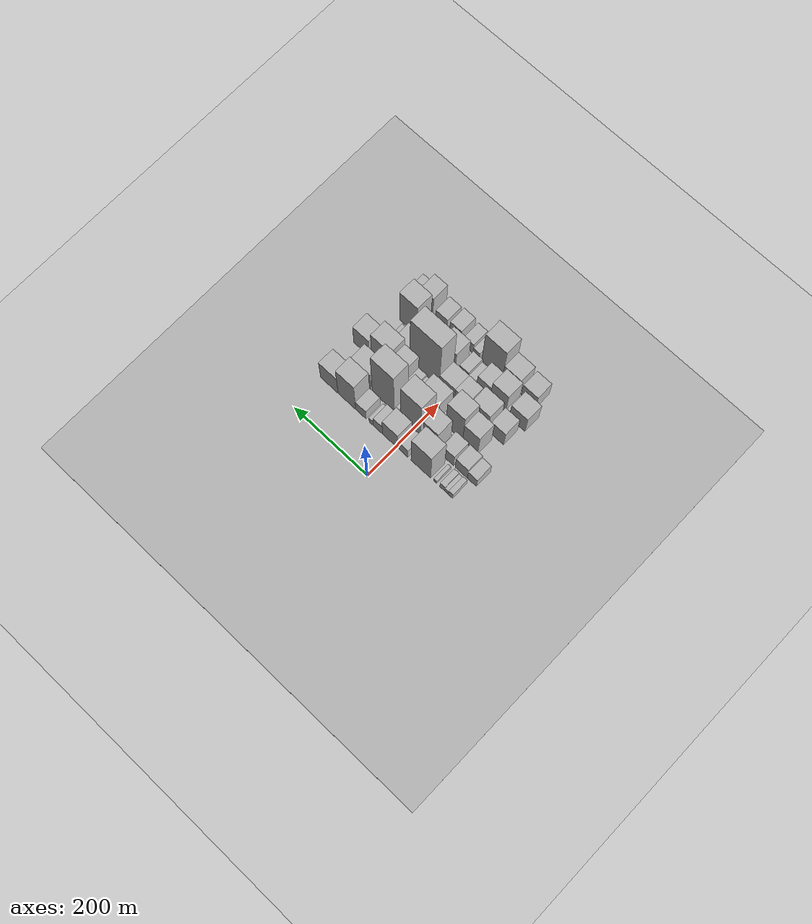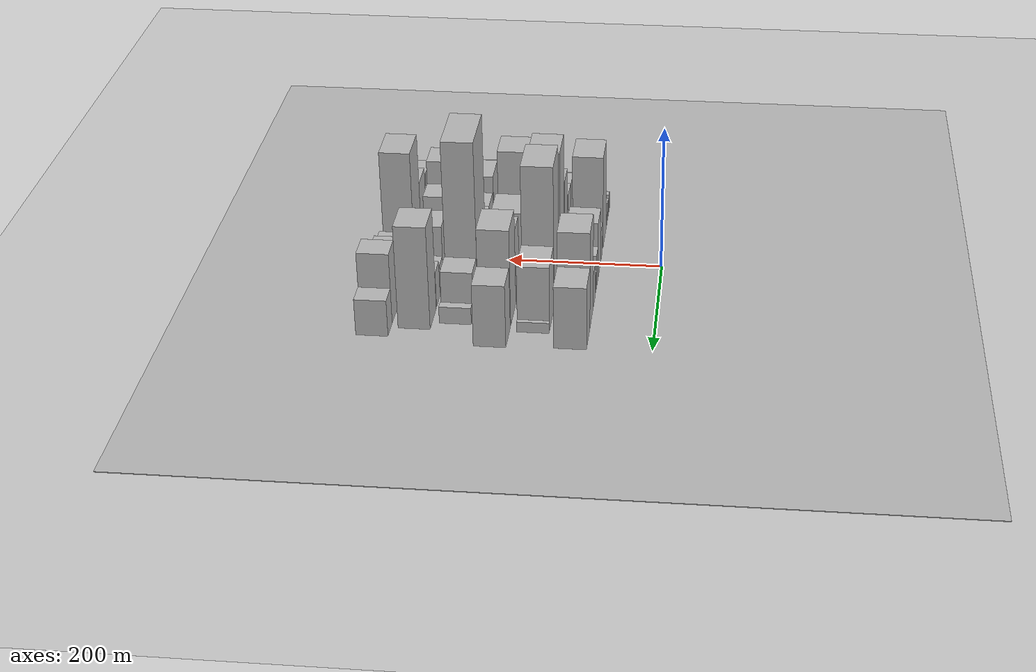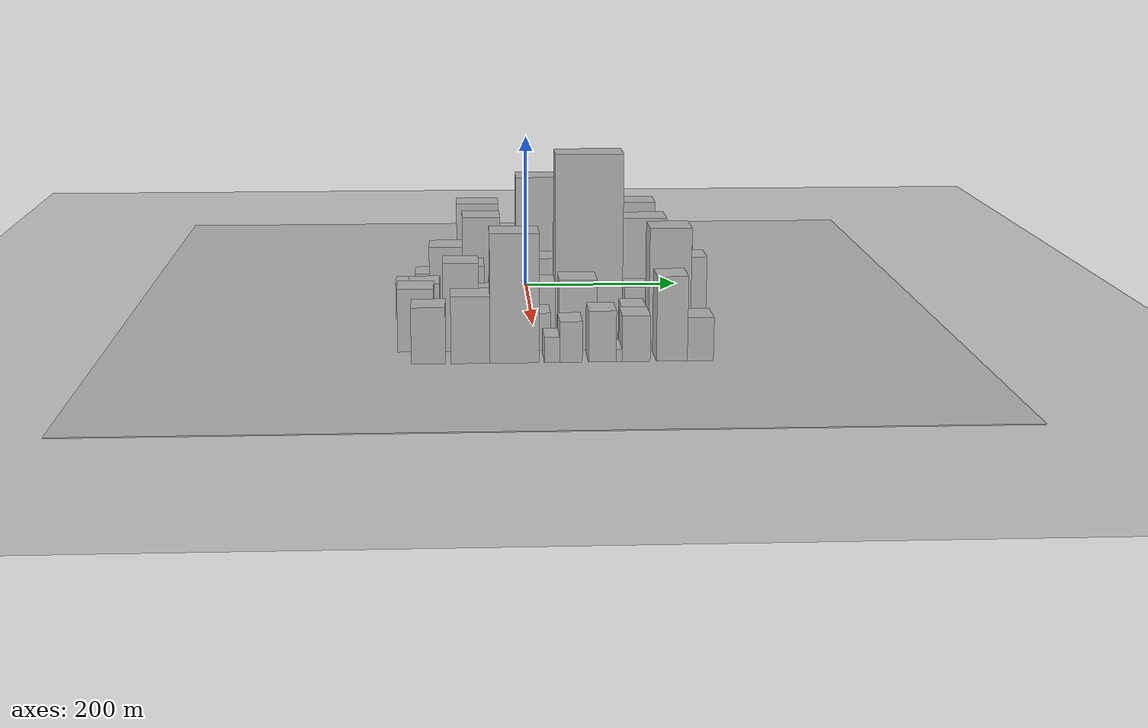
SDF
<sdf version="1.6">
 <world name="default">
  <include><name>ground_plane_1</name><uri>model://HANNAS_ground_plane</uri></include>
  <include>
   <name>ground_plane_2</name>
   <uri>model://HANNAS_ground_plane</uri>
   <pose>100 0 0  0 0 0</pose>
  </include>
  <model name="building_21">
   <static>1</static>
   <pose>100.0000 -145.0932 0 0.000000 0.000000 0.000000</pose>
   <link name="link">
    <pose>0 0 13.50 0 0 0</pose>
    <collision name="collision"><geometry><box><size>40.0000 11.6714 27.0000</size></box></geometry></collision>
    <visual name="visual">
     <cast_shadows>0</cast_shadows>
     <geometry><box><size>40.0000 11.6714 27.0000</size></box></geometry>
     <material>
      <script>
       <uri>model://HANNAS_wall/materials/scripts</uri>
       <uri>model://HANNAS_wall/materials/textures</uri>
       <name>vrc/HANNAS_wall</name>
      </script>
     </material>
    </visual>
   </link>
  </model>
  <model name="building_22">
   <static>1</static>
   <pose>100.0000 -134.6083 0 0.000000 0.000000 0.000000</pose>
   <link name="link">
    <pose>0 0 10.50 0 0 0</pose>
    <collision name="collision"><geometry><box><size>40.0000 9.2983 21.0000</size></box></geometry></collision>
    <visual name="visual">
     <cast_shadows>0</cast_shadows>
     <geometry><box><size>40.0000 9.2983 21.0000</size></box></geometry>
     <material>
      <script>
       <uri>model://HANNAS_wall/materials/scripts</uri>
       <uri>model://HANNAS_wall/materials/textures</uri>
       <name>vrc/HANNAS_wall</name>
      </script>
     </material>
    </visual>
   </link>
  </model>
  <model name="building_23">
   <static>1</static>
   <pose>100.0000 -123.3137 0 0.000000 0.000000 0.000000</pose>
   <link name="link">
    <pose>0 0 13.50 0 0 0</pose>
    <collision name="collision"><geometry><box><size>40.0000 13.2908 27.0000</size></box></geometry></collision>
    <visual name="visual">
     <cast_shadows>0</cast_shadows>
     <geometry><box><size>40.0000 13.2908 27.0000</size></box></geometry>
     <material>
      <script>
       <uri>model://HANNAS_wall/materials/scripts</uri>
       <uri>model://HANNAS_wall/materials/textures</uri>
       <name>vrc/HANNAS_wall</name>
      </script>
     </material>
    </visual>
   </link>
  </model>
  <model name="building_24">
   <static>1</static>
   <pose>100.0000 -104.4396 0 0.000000 0.000000 0.000000</pose>
   <link name="link">
    <pose>0 0 9.00 0 0 0</pose>
    <collision name="collision"><geometry><box><size>40.0000 8.4573 18.0000</size></box></geometry></collision>
    <visual name="visual">
     <cast_shadows>0</cast_shadows>
     <geometry><box><size>40.0000 8.4573 18.0000</size></box></geometry>
     <material>
      <script>
       <uri>model://HANNAS_wall/materials/scripts</uri>
       <uri>model://HANNAS_wall/materials/textures</uri>
       <name>vrc/HANNAS_wall</name>
      </script>
     </material>
    </visual>
   </link>
  </model>
  <model name="building_25">
   <static>1</static>
   <pose>100.0000 -66.0082 0 0.000000 0.000000 0.000000</pose>
   <link name="link">
    <pose>0 0 67.50 0 0 0</pose>
    <collision name="collision"><geometry><box><size>40.0000 52.4056 135.0000</size></box></geometry></collision>
    <visual name="visual">
     <cast_shadows>0</cast_shadows>
     <geometry><box><size>40.0000 52.4056 135.0000</size></box></geometry>
     <material>
      <script>
       <uri>model://HANNAS_wall/materials/scripts</uri>
       <uri>model://HANNAS_wall/materials/textures</uri>
       <name>vrc/HANNAS_wall</name>
      </script>
     </material>
    </visual>
   </link>
  </model>
  <model name="building_26">
   <static>1</static>
   <pose>100.0000 -19.6957 0 0.000000 0.000000 0.000000</pose>
   <link name="link">
    <pose>0 0 22.50 0 0 0</pose>
    <collision name="collision"><geometry><box><size>40.0000 24.2194 45.0000</size></box></geometry></collision>
    <visual name="visual">
     <cast_shadows>0</cast_shadows>
     <geometry><box><size>40.0000 24.2194 45.0000</size></box></geometry>
     <material>
      <script>
       <uri>model://HANNAS_wall/materials/scripts</uri>
       <uri>model://HANNAS_wall/materials/textures</uri>
       <name>vrc/HANNAS_wall</name>
      </script>
     </material>
    </visual>
   </link>
  </model>
  <model name="building_27">
   <static>1</static>
   <pose>100.0000 16.2949 0 0.000000 0.000000 0.000000</pose>
   <link name="link">
    <pose>0 0 40.50 0 0 0</pose>
    <collision name="collision"><geometry><box><size>40.0000 41.7618 81.0000</size></box></geometry></collision>
    <visual name="visual">
     <cast_shadows>0</cast_shadows>
     <geometry><box><size>40.0000 41.7618 81.0000</size></box></geometry>
     <material>
      <script>
       <uri>model://HANNAS_wall/materials/scripts</uri>
       <uri>model://HANNAS_wall/materials/textures</uri>
       <name>vrc/HANNAS_wall</name>
      </script>
     </material>
    </visual>
   </link>
  </model>
  <model name="building_28">
   <static>1</static>
   <pose>100.0000 49.4250 0 0.000000 0.000000 0.000000</pose>
   <link name="link">
    <pose>0 0 24.00 0 0 0</pose>
    <collision name="collision"><geometry><box><size>40.0000 24.4985 48.0000</size></box></geometry></collision>
    <visual name="visual">
     <cast_shadows>0</cast_shadows>
     <geometry><box><size>40.0000 24.4985 48.0000</size></box></geometry>
     <material>
      <script>
       <uri>model://HANNAS_wall/materials/scripts</uri>
       <uri>model://HANNAS_wall/materials/textures</uri>
       <name>vrc/HANNAS_wall</name>
      </script>
     </material>
    </visual>
   </link>
  </model>
  <model name="building_29">
   <static>1</static>
   <pose>100.0000 67.4773 0 0.000000 0.000000 0.000000</pose>
   <link name="link">
    <pose>0 0 13.50 0 0 0</pose>
    <collision name="collision"><geometry><box><size>40.0000 11.6061 27.0000</size></box></geometry></collision>
    <visual name="visual">
     <cast_shadows>0</cast_shadows>
     <geometry><box><size>40.0000 11.6061 27.0000</size></box></geometry>
     <material>
      <script>
       <uri>model://HANNAS_wall/materials/scripts</uri>
       <uri>model://HANNAS_wall/materials/textures</uri>
       <name>vrc/HANNAS_wall</name>
      </script>
     </material>
    </visual>
   </link>
  </model>
  <model name="building_30">
   <static>1</static>
   <pose>100.0000 95.4846 0 0.000000 0.000000 0.000000</pose>
   <link name="link">
    <pose>0 0 24.00 0 0 0</pose>
    <collision name="collision"><geometry><box><size>40.0000 28.4085 48.0000</size></box></geometry></collision>
    <visual name="visual">
     <cast_shadows>0</cast_shadows>
     <geometry><box><size>40.0000 28.4085 48.0000</size></box></geometry>
     <material>
      <script>
       <uri>model://HANNAS_wall/materials/scripts</uri>
       <uri>model://HANNAS_wall/materials/textures</uri>
       <name>vrc/HANNAS_wall</name>
      </script>
     </material>
    </visual>
   </link>
  </model>
  <model name="building_31">
   <static>1</static>
   <pose>100.0000 133.8912 0 0.000000 0.000000 0.000000</pose>
   <link name="link">
    <pose>0 0 67.50 0 0 0</pose>
    <collision name="collision"><geometry><box><size>40.0000 48.4046 135.0000</size></box></geometry></collision>
    <visual name="visual">
     <cast_shadows>0</cast_shadows>
     <geometry><box><size>40.0000 48.4046 135.0000</size></box></geometry>
     <material>
      <script>
       <uri>model://HANNAS_wall/materials/scripts</uri>
       <uri>model://HANNAS_wall/materials/textures</uri>
       <name>vrc/HANNAS_wall</name>
      </script>
     </material>
    </visual>
   </link>
  </model>
  <model name="building_32">
   <static>1</static>
   <pose>100.0000 182.2587 0 0.000000 0.000000 0.000000</pose>
   <link name="link">
    <pose>0 0 43.50 0 0 0</pose>
    <collision name="collision"><geometry><box><size>40.0000 48.3305 87.0000</size></box></geometry></collision>
    <visual name="visual">
     <cast_shadows>0</cast_shadows>
     <geometry><box><size>40.0000 48.3305 87.0000</size></box></geometry>
     <material>
      <script>
       <uri>model://HANNAS_wall/materials/scripts</uri>
       <uri>model://HANNAS_wall/materials/textures</uri>
       <name>vrc/HANNAS_wall</name>
      </script>
     </material>
    </visual>
   </link>
  </model>
  <model name="building_78">
   <static>1</static>
   <pose>149.0000 -156.0595 0 0.000000 0.000000 0.000000</pose>
   <link name="link">
    <pose>0 0 22.50 0 0 0</pose>
    <collision name="collision"><geometry><box><size>40.0000 23.9540 45.0000</size></box></geometry></collision>
    <visual name="visual">
     <cast_shadows>0</cast_shadows>
     <geometry><box><size>40.0000 23.9540 45.0000</size></box></geometry>
     <material>
      <script>
       <uri>model://HANNAS_wall/materials/scripts</uri>
       <uri>model://HANNAS_wall/materials/textures</uri>
       <name>vrc/HANNAS_wall</name>
      </script>
     </material>
    </visual>
   </link>
  </model>
  <model name="building_79">
   <static>1</static>
   <pose>149.0000 -127.8496 0 0.000000 0.000000 0.000000</pose>
   <link name="link">
    <pose>0 0 28.50 0 0 0</pose>
    <collision name="collision"><geometry><box><size>40.0000 32.4659 57.0000</size></box></geometry></collision>
    <visual name="visual">
     <cast_shadows>0</cast_shadows>
     <geometry><box><size>40.0000 32.4659 57.0000</size></box></geometry>
     <material>
      <script>
       <uri>model://HANNAS_wall/materials/scripts</uri>
       <uri>model://HANNAS_wall/materials/textures</uri>
       <name>vrc/HANNAS_wall</name>
      </script>
     </material>
    </visual>
   </link>
  </model>
  <model name="building_80">
   <static>1</static>
   <pose>149.0000 -91.1820 0 0.000000 0.000000 0.000000</pose>
   <link name="link">
    <pose>0 0 30.00 0 0 0</pose>
    <collision name="collision"><geometry><box><size>40.0000 32.8693 60.0000</size></box></geometry></collision>
    <visual name="visual">
     <cast_shadows>0</cast_shadows>
     <geometry><box><size>40.0000 32.8693 60.0000</size></box></geometry>
     <material>
      <script>
       <uri>model://HANNAS_wall/materials/scripts</uri>
       <uri>model://HANNAS_wall/materials/textures</uri>
       <name>vrc/HANNAS_wall</name>
      </script>
     </material>
    </visual>
   </link>
  </model>
  <model name="building_81">
   <static>1</static>
   <pose>149.0000 -70.4984 0 0.000000 0.000000 0.000000</pose>
   <link name="link">
    <pose>0 0 9.00 0 0 0</pose>
    <collision name="collision"><geometry><box><size>40.0000 8.4979 18.0000</size></box></geometry></collision>
    <visual name="visual">
     <cast_shadows>0</cast_shadows>
     <geometry><box><size>40.0000 8.4979 18.0000</size></box></geometry>
     <material>
      <script>
       <uri>model://HANNAS_wall/materials/scripts</uri>
       <uri>model://HANNAS_wall/materials/textures</uri>
       <name>vrc/HANNAS_wall</name>
      </script>
     </material>
    </visual>
   </link>
  </model>
  <model name="building_82">
   <static>1</static>
   <pose>149.0000 -44.6579 0 0.000000 0.000000 0.000000</pose>
   <link name="link">
    <pose>0 0 52.50 0 0 0</pose>
    <collision name="collision"><geometry><box><size>40.0000 37.1831 105.0000</size></box></geometry></collision>
    <visual name="visual">
     <cast_shadows>0</cast_shadows>
     <geometry><box><size>40.0000 37.1831 105.0000</size></box></geometry>
     <material>
      <script>
       <uri>model://HANNAS_wall/materials/scripts</uri>
       <uri>model://HANNAS_wall/materials/textures</uri>
       <name>vrc/HANNAS_wall</name>
      </script>
     </material>
    </visual>
   </link>
  </model>
  <model name="building_83">
   <static>1</static>
   <pose>149.0000 -22.7511 0 0.000000 0.000000 0.000000</pose>
   <link name="link">
    <pose>0 0 7.50 0 0 0</pose>
    <collision name="collision"><geometry><box><size>40.0000 6.6305 15.0000</size></box></geometry></collision>
    <visual name="visual">
     <cast_shadows>0</cast_shadows>
     <geometry><box><size>40.0000 6.6305 15.0000</size></box></geometry>
     <material>
      <script>
       <uri>model://HANNAS_wall/materials/scripts</uri>
       <uri>model://HANNAS_wall/materials/textures</uri>
       <name>vrc/HANNAS_wall</name>
      </script>
     </material>
    </visual>
   </link>
  </model>
  <model name="building_84">
   <static>1</static>
   <pose>149.0000 7.8253 0 0.000000 0.000000 0.000000</pose>
   <link name="link">
    <pose>0 0 88.50 0 0 0</pose>
    <collision name="collision"><geometry><box><size>40.0000 54.5223 177.0000</size></box></geometry></collision>
    <visual name="visual">
     <cast_shadows>0</cast_shadows>
     <geometry><box><size>40.0000 54.5223 177.0000</size></box></geometry>
     <material>
      <script>
       <uri>model://HANNAS_wall/materials/scripts</uri>
       <uri>model://HANNAS_wall/materials/textures</uri>
       <name>vrc/HANNAS_wall</name>
      </script>
     </material>
    </visual>
   </link>
  </model>
  <model name="building_85">
   <static>1</static>
   <pose>149.0000 48.2555 0 0.000000 0.000000 0.000000</pose>
   <link name="link">
    <pose>0 0 9.00 0 0 0</pose>
    <collision name="collision"><geometry><box><size>40.0000 8.3381 18.0000</size></box></geometry></collision>
    <visual name="visual">
     <cast_shadows>0</cast_shadows>
     <geometry><box><size>40.0000 8.3381 18.0000</size></box></geometry>
     <material>
      <script>
       <uri>model://HANNAS_wall/materials/scripts</uri>
       <uri>model://HANNAS_wall/materials/textures</uri>
       <name>vrc/HANNAS_wall</name>
      </script>
     </material>
    </visual>
   </link>
  </model>
  <model name="building_86">
   <static>1</static>
   <pose>149.0000 82.2153 0 0.000000 0.000000 0.000000</pose>
   <link name="link">
    <pose>0 0 99.00 0 0 0</pose>
    <collision name="collision"><geometry><box><size>40.0000 59.5814 198.0000</size></box></geometry></collision>
    <visual name="visual">
     <cast_shadows>0</cast_shadows>
     <geometry><box><size>40.0000 59.5814 198.0000</size></box></geometry>
     <material>
      <script>
       <uri>model://HANNAS_wall/materials/scripts</uri>
       <uri>model://HANNAS_wall/materials/textures</uri>
       <name>vrc/HANNAS_wall</name>
      </script>
     </material>
    </visual>
   </link>
  </model>
  <model name="building_87">
   <static>1</static>
   <pose>149.0000 141.4080 0 0.000000 0.000000 0.000000</pose>
   <link name="link">
    <pose>0 0 45.00 0 0 0</pose>
    <collision name="collision"><geometry><box><size>40.0000 52.8040 90.0000</size></box></geometry></collision>
    <visual name="visual">
     <cast_shadows>0</cast_shadows>
     <geometry><box><size>40.0000 52.8040 90.0000</size></box></geometry>
     <material>
      <script>
       <uri>model://HANNAS_wall/materials/scripts</uri>
       <uri>model://HANNAS_wall/materials/textures</uri>
       <name>vrc/HANNAS_wall</name>
      </script>
     </material>
    </visual>
   </link>
  </model>
  <model name="building_88">
   <static>1</static>
   <pose>149.0000 170.8141 0 0.000000 0.000000 0.000000</pose>
   <link name="link">
    <pose>0 0 7.50 0 0 0</pose>
    <collision name="collision"><geometry><box><size>40.0000 6.0082 15.0000</size></box></geometry></collision>
    <visual name="visual">
     <cast_shadows>0</cast_shadows>
     <geometry><box><size>40.0000 6.0082 15.0000</size></box></geometry>
     <material>
      <script>
       <uri>model://HANNAS_wall/materials/scripts</uri>
       <uri>model://HANNAS_wall/materials/textures</uri>
       <name>vrc/HANNAS_wall</name>
      </script>
     </material>
    </visual>
   </link>
  </model>
  <model name="building_135">
   <static>1</static>
   <pose>198.0000 -105.4573 0 0.000000 0.000000 0.000000</pose>
   <link name="link">
    <pose>0 0 51.00 0 0 0</pose>
    <collision name="collision"><geometry><box><size>40.0000 39.9125 102.0000</size></box></geometry></collision>
    <visual name="visual">
     <cast_shadows>0</cast_shadows>
     <geometry><box><size>40.0000 39.9125 102.0000</size></box></geometry>
     <material>
      <script>
       <uri>model://HANNAS_wall/materials/scripts</uri>
       <uri>model://HANNAS_wall/materials/textures</uri>
       <name>vrc/HANNAS_wall</name>
      </script>
     </material>
    </visual>
   </link>
  </model>
  <model name="building_136">
   <static>1</static>
   <pose>198.0000 -62.9487 0 0.000000 0.000000 0.000000</pose>
   <link name="link">
    <pose>0 0 69.00 0 0 0</pose>
    <collision name="collision"><geometry><box><size>40.0000 45.1047 138.0000</size></box></geometry></collision>
    <visual name="visual">
     <cast_shadows>0</cast_shadows>
     <geometry><box><size>40.0000 45.1047 138.0000</size></box></geometry>
     <material>
      <script>
       <uri>model://HANNAS_wall/materials/scripts</uri>
       <uri>model://HANNAS_wall/materials/textures</uri>
       <name>vrc/HANNAS_wall</name>
      </script>
     </material>
    </visual>
   </link>
  </model>
  <model name="building_137">
   <static>1</static>
   <pose>198.0000 -35.6148 0 0.000000 0.000000 0.000000</pose>
   <link name="link">
    <pose>0 0 10.50 0 0 0</pose>
    <collision name="collision"><geometry><box><size>40.0000 9.5632 21.0000</size></box></geometry></collision>
    <visual name="visual">
     <cast_shadows>0</cast_shadows>
     <geometry><box><size>40.0000 9.5632 21.0000</size></box></geometry>
     <material>
      <script>
       <uri>model://HANNAS_wall/materials/scripts</uri>
       <uri>model://HANNAS_wall/materials/textures</uri>
       <name>vrc/HANNAS_wall</name>
      </script>
     </material>
    </visual>
   </link>
  </model>
  <model name="building_138">
   <static>1</static>
   <pose>198.0000 5.2168 0 0.000000 0.000000 0.000000</pose>
   <link name="link">
    <pose>0 0 43.50 0 0 0</pose>
    <collision name="collision"><geometry><box><size>40.0000 52.1000 87.0000</size></box></geometry></collision>
    <visual name="visual">
     <cast_shadows>0</cast_shadows>
     <geometry><box><size>40.0000 52.1000 87.0000</size></box></geometry>
     <material>
      <script>
       <uri>model://HANNAS_wall/materials/scripts</uri>
       <uri>model://HANNAS_wall/materials/textures</uri>
       <name>vrc/HANNAS_wall</name>
      </script>
     </material>
    </visual>
   </link>
  </model>
  <model name="building_139">
   <static>1</static>
   <pose>198.0000 39.9649 0 0.000000 0.000000 0.000000</pose>
   <link name="link">
    <pose>0 0 16.50 0 0 0</pose>
    <collision name="collision"><geometry><box><size>40.0000 17.3963 33.0000</size></box></geometry></collision>
    <visual name="visual">
     <cast_shadows>0</cast_shadows>
     <geometry><box><size>40.0000 17.3963 33.0000</size></box></geometry>
     <material>
      <script>
       <uri>model://HANNAS_wall/materials/scripts</uri>
       <uri>model://HANNAS_wall/materials/textures</uri>
       <name>vrc/HANNAS_wall</name>
      </script>
     </material>
    </visual>
   </link>
  </model>
  <model name="building_140">
   <static>1</static>
   <pose>198.0000 59.7171 0 0.000000 0.000000 0.000000</pose>
   <link name="link">
    <pose>0 0 21.00 0 0 0</pose>
    <collision name="collision"><geometry><box><size>40.0000 22.1080 42.0000</size></box></geometry></collision>
    <visual name="visual">
     <cast_shadows>0</cast_shadows>
     <geometry><box><size>40.0000 22.1080 42.0000</size></box></geometry>
     <material>
      <script>
       <uri>model://HANNAS_wall/materials/scripts</uri>
       <uri>model://HANNAS_wall/materials/textures</uri>
       <name>vrc/HANNAS_wall</name>
      </script>
     </material>
    </visual>
   </link>
  </model>
  <model name="building_141">
   <static>1</static>
   <pose>198.0000 89.1880 0 0.000000 0.000000 0.000000</pose>
   <link name="link">
    <pose>0 0 52.50 0 0 0</pose>
    <collision name="collision"><geometry><box><size>40.0000 36.8338 105.0000</size></box></geometry></collision>
    <visual name="visual">
     <cast_shadows>0</cast_shadows>
     <geometry><box><size>40.0000 36.8338 105.0000</size></box></geometry>
     <material>
      <script>
       <uri>model://HANNAS_wall/materials/scripts</uri>
       <uri>model://HANNAS_wall/materials/textures</uri>
       <name>vrc/HANNAS_wall</name>
      </script>
     </material>
    </visual>
   </link>
  </model>
  <model name="building_142">
   <static>1</static>
   <pose>198.0000 134.1314 0 0.000000 0.000000 0.000000</pose>
   <link name="link">
    <pose>0 0 67.50 0 0 0</pose>
    <collision name="collision"><geometry><box><size>40.0000 53.0529 135.0000</size></box></geometry></collision>
    <visual name="visual">
     <cast_shadows>0</cast_shadows>
     <geometry><box><size>40.0000 53.0529 135.0000</size></box></geometry>
     <material>
      <script>
       <uri>model://HANNAS_wall/materials/scripts</uri>
       <uri>model://HANNAS_wall/materials/textures</uri>
       <name>vrc/HANNAS_wall</name>
      </script>
     </material>
    </visual>
   </link>
  </model>
  <model name="building_143">
   <static>1</static>
   <pose>198.0000 188.4529 0 0.000000 0.000000 0.000000</pose>
   <link name="link">
    <pose>0 0 43.50 0 0 0</pose>
    <collision name="collision"><geometry><box><size>40.0000 43.5903 87.0000</size></box></geometry></collision>
    <visual name="visual">
     <cast_shadows>0</cast_shadows>
     <geometry><box><size>40.0000 43.5903 87.0000</size></box></geometry>
     <material>
      <script>
       <uri>model://HANNAS_wall/materials/scripts</uri>
       <uri>model://HANNAS_wall/materials/textures</uri>
       <name>vrc/HANNAS_wall</name>
      </script>
     </material>
    </visual>
   </link>
  </model>
  <model name="building_178">
   <static>1</static>
   <pose>247.0000 -130.9341 0 0.000000 0.000000 0.000000</pose>
   <link name="link">
    <pose>0 0 34.50 0 0 0</pose>
    <collision name="collision"><geometry><box><size>40.0000 36.5525 69.0000</size></box></geometry></collision>
    <visual name="visual">
     <cast_shadows>0</cast_shadows>
     <geometry><box><size>40.0000 36.5525 69.0000</size></box></geometry>
     <material>
      <script>
       <uri>model://HANNAS_wall/materials/scripts</uri>
       <uri>model://HANNAS_wall/materials/textures</uri>
       <name>vrc/HANNAS_wall</name>
      </script>
     </material>
    </visual>
   </link>
  </model>
  <model name="building_179">
   <static>1</static>
   <pose>247.0000 -83.8888 0 0.000000 0.000000 0.000000</pose>
   <link name="link">
    <pose>0 0 45.00 0 0 0</pose>
    <collision name="collision"><geometry><box><size>40.0000 47.5382 90.0000</size></box></geometry></collision>
    <visual name="visual">
     <cast_shadows>0</cast_shadows>
     <geometry><box><size>40.0000 47.5382 90.0000</size></box></geometry>
     <material>
      <script>
       <uri>model://HANNAS_wall/materials/scripts</uri>
       <uri>model://HANNAS_wall/materials/textures</uri>
       <name>vrc/HANNAS_wall</name>
      </script>
     </material>
    </visual>
   </link>
  </model>
  <model name="building_180">
   <static>1</static>
   <pose>247.0000 -36.5448 0 0.000000 0.000000 0.000000</pose>
   <link name="link">
    <pose>0 0 34.50 0 0 0</pose>
    <collision name="collision"><geometry><box><size>40.0000 37.1497 69.0000</size></box></geometry></collision>
    <visual name="visual">
     <cast_shadows>0</cast_shadows>
     <geometry><box><size>40.0000 37.1497 69.0000</size></box></geometry>
     <material>
      <script>
       <uri>model://HANNAS_wall/materials/scripts</uri>
       <uri>model://HANNAS_wall/materials/textures</uri>
       <name>vrc/HANNAS_wall</name>
      </script>
     </material>
    </visual>
   </link>
  </model>
  <model name="building_181">
   <static>1</static>
   <pose>247.0000 2.6982 0 0.000000 0.000000 0.000000</pose>
   <link name="link">
    <pose>0 0 34.50 0 0 0</pose>
    <collision name="collision"><geometry><box><size>40.0000 41.3364 69.0000</size></box></geometry></collision>
    <visual name="visual">
     <cast_shadows>0</cast_shadows>
     <geometry><box><size>40.0000 41.3364 69.0000</size></box></geometry>
     <material>
      <script>
       <uri>model://HANNAS_wall/materials/scripts</uri>
       <uri>model://HANNAS_wall/materials/textures</uri>
       <name>vrc/HANNAS_wall</name>
      </script>
     </material>
    </visual>
   </link>
  </model>
  <model name="building_182">
   <static>1</static>
   <pose>247.0000 63.2179 0 0.000000 0.000000 0.000000</pose>
   <link name="link">
    <pose>0 0 111.00 0 0 0</pose>
    <collision name="collision"><geometry><box><size>40.0000 79.7031 222.0000</size></box></geometry></collision>
    <visual name="visual">
     <cast_shadows>0</cast_shadows>
     <geometry><box><size>40.0000 79.7031 222.0000</size></box></geometry>
     <material>
      <script>
       <uri>model://HANNAS_wall/materials/scripts</uri>
       <uri>model://HANNAS_wall/materials/textures</uri>
       <name>vrc/HANNAS_wall</name>
      </script>
     </material>
    </visual>
   </link>
  </model>
  <model name="building_183">
   <static>1</static>
   <pose>247.0000 124.7364 0 0.000000 0.000000 0.000000</pose>
   <link name="link">
    <pose>0 0 31.50 0 0 0</pose>
    <collision name="collision"><geometry><box><size>40.0000 37.3337 63.0000</size></box></geometry></collision>
    <visual name="visual">
     <cast_shadows>0</cast_shadows>
     <geometry><box><size>40.0000 37.3337 63.0000</size></box></geometry>
     <material>
      <script>
       <uri>model://HANNAS_wall/materials/scripts</uri>
       <uri>model://HANNAS_wall/materials/textures</uri>
       <name>vrc/HANNAS_wall</name>
      </script>
     </material>
    </visual>
   </link>
  </model>
  <model name="building_184">
   <static>1</static>
   <pose>247.0000 156.2579 0 0.000000 0.000000 0.000000</pose>
   <link name="link">
    <pose>0 0 12.00 0 0 0</pose>
    <collision name="collision"><geometry><box><size>40.0000 11.7095 24.0000</size></box></geometry></collision>
    <visual name="visual">
     <cast_shadows>0</cast_shadows>
     <geometry><box><size>40.0000 11.7095 24.0000</size></box></geometry>
     <material>
      <script>
       <uri>model://HANNAS_wall/materials/scripts</uri>
       <uri>model://HANNAS_wall/materials/textures</uri>
       <name>vrc/HANNAS_wall</name>
      </script>
     </material>
    </visual>
   </link>
  </model>
  <model name="building_225">
   <static>1</static>
   <pose>296.0000 -140.0852 0 0.000000 0.000000 0.000000</pose>
   <link name="link">
    <pose>0 0 37.50 0 0 0</pose>
    <collision name="collision"><geometry><box><size>40.0000 42.0534 75.0000</size></box></geometry></collision>
    <visual name="visual">
     <cast_shadows>0</cast_shadows>
     <geometry><box><size>40.0000 42.0534 75.0000</size></box></geometry>
     <material>
      <script>
       <uri>model://HANNAS_wall/materials/scripts</uri>
       <uri>model://HANNAS_wall/materials/textures</uri>
       <name>vrc/HANNAS_wall</name>
      </script>
     </material>
    </visual>
   </link>
  </model>
  <model name="building_226">
   <static>1</static>
   <pose>296.0000 -113.9166 0 0.000000 0.000000 0.000000</pose>
   <link name="link">
    <pose>0 0 12.00 0 0 0</pose>
    <collision name="collision"><geometry><box><size>40.0000 10.2838 24.0000</size></box></geometry></collision>
    <visual name="visual">
     <cast_shadows>0</cast_shadows>
     <geometry><box><size>40.0000 10.2838 24.0000</size></box></geometry>
     <material>
      <script>
       <uri>model://HANNAS_wall/materials/scripts</uri>
       <uri>model://HANNAS_wall/materials/textures</uri>
       <name>vrc/HANNAS_wall</name>
      </script>
     </material>
    </visual>
   </link>
  </model>
  <model name="building_227">
   <static>1</static>
   <pose>296.0000 -88.1792 0 0.000000 0.000000 0.000000</pose>
   <link name="link">
    <pose>0 0 52.50 0 0 0</pose>
    <collision name="collision"><geometry><box><size>40.0000 41.1910 105.0000</size></box></geometry></collision>
    <visual name="visual">
     <cast_shadows>0</cast_shadows>
     <geometry><box><size>40.0000 41.1910 105.0000</size></box></geometry>
     <material>
      <script>
       <uri>model://HANNAS_wall/materials/scripts</uri>
       <uri>model://HANNAS_wall/materials/textures</uri>
       <name>vrc/HANNAS_wall</name>
      </script>
     </material>
    </visual>
   </link>
  </model>
  <model name="building_228">
   <static>1</static>
   <pose>296.0000 -49.4998 0 0.000000 0.000000 0.000000</pose>
   <link name="link">
    <pose>0 0 36.00 0 0 0</pose>
    <collision name="collision"><geometry><box><size>40.0000 36.1677 72.0000</size></box></geometry></collision>
    <visual name="visual">
     <cast_shadows>0</cast_shadows>
     <geometry><box><size>40.0000 36.1677 72.0000</size></box></geometry>
     <material>
      <script>
       <uri>model://HANNAS_wall/materials/scripts</uri>
       <uri>model://HANNAS_wall/materials/textures</uri>
       <name>vrc/HANNAS_wall</name>
      </script>
     </material>
    </visual>
   </link>
  </model>
  <model name="building_229">
   <static>1</static>
   <pose>296.0000 -17.8007 0 0.000000 0.000000 0.000000</pose>
   <link name="link">
    <pose>0 0 15.00 0 0 0</pose>
    <collision name="collision"><geometry><box><size>40.0000 17.2304 30.0000</size></box></geometry></collision>
    <visual name="visual">
     <cast_shadows>0</cast_shadows>
     <geometry><box><size>40.0000 17.2304 30.0000</size></box></geometry>
     <material>
      <script>
       <uri>model://HANNAS_wall/materials/scripts</uri>
       <uri>model://HANNAS_wall/materials/textures</uri>
       <name>vrc/HANNAS_wall</name>
      </script>
     </material>
    </visual>
   </link>
  </model>
  <model name="building_230">
   <static>1</static>
   <pose>296.0000 3.1072 0 0.000000 0.000000 0.000000</pose>
   <link name="link">
    <pose>0 0 22.50 0 0 0</pose>
    <collision name="collision"><geometry><box><size>40.0000 24.5856 45.0000</size></box></geometry></collision>
    <visual name="visual">
     <cast_shadows>0</cast_shadows>
     <geometry><box><size>40.0000 24.5856 45.0000</size></box></geometry>
     <material>
      <script>
       <uri>model://HANNAS_wall/materials/scripts</uri>
       <uri>model://HANNAS_wall/materials/textures</uri>
       <name>vrc/HANNAS_wall</name>
      </script>
     </material>
    </visual>
   </link>
  </model>
  <model name="building_231">
   <static>1</static>
   <pose>296.0000 47.1475 0 0.000000 0.000000 0.000000</pose>
   <link name="link">
    <pose>0 0 42.00 0 0 0</pose>
    <collision name="collision"><geometry><box><size>40.0000 43.4949 84.0000</size></box></geometry></collision>
    <visual name="visual">
     <cast_shadows>0</cast_shadows>
     <geometry><box><size>40.0000 43.4949 84.0000</size></box></geometry>
     <material>
      <script>
       <uri>model://HANNAS_wall/materials/scripts</uri>
       <uri>model://HANNAS_wall/materials/textures</uri>
       <name>vrc/HANNAS_wall</name>
      </script>
     </material>
    </visual>
   </link>
  </model>
  <model name="building_232">
   <static>1</static>
   <pose>296.0000 80.3065 0 0.000000 0.000000 0.000000</pose>
   <link name="link">
    <pose>0 0 21.00 0 0 0</pose>
    <collision name="collision"><geometry><box><size>40.0000 22.8231 42.0000</size></box></geometry></collision>
    <visual name="visual">
     <cast_shadows>0</cast_shadows>
     <geometry><box><size>40.0000 22.8231 42.0000</size></box></geometry>
     <material>
      <script>
       <uri>model://HANNAS_wall/materials/scripts</uri>
       <uri>model://HANNAS_wall/materials/textures</uri>
       <name>vrc/HANNAS_wall</name>
      </script>
     </material>
    </visual>
   </link>
  </model>
  <model name="building_233">
   <static>1</static>
   <pose>296.0000 112.0164 0 0.000000 0.000000 0.000000</pose>
   <link name="link">
    <pose>0 0 25.50 0 0 0</pose>
    <collision name="collision"><geometry><box><size>40.0000 28.5966 51.0000</size></box></geometry></collision>
    <visual name="visual">
     <cast_shadows>0</cast_shadows>
     <geometry><box><size>40.0000 28.5966 51.0000</size></box></geometry>
     <material>
      <script>
       <uri>model://HANNAS_wall/materials/scripts</uri>
       <uri>model://HANNAS_wall/materials/textures</uri>
       <name>vrc/HANNAS_wall</name>
      </script>
     </material>
    </visual>
   </link>
  </model>
  <model name="building_234">
   <static>1</static>
   <pose>296.0000 153.4840 0 0.000000 0.000000 0.000000</pose>
   <link name="link">
    <pose>0 0 72.00 0 0 0</pose>
    <collision name="collision"><geometry><box><size>40.0000 48.3386 144.0000</size></box></geometry></collision>
    <visual name="visual">
     <cast_shadows>0</cast_shadows>
     <geometry><box><size>40.0000 48.3386 144.0000</size></box></geometry>
     <material>
      <script>
       <uri>model://HANNAS_wall/materials/scripts</uri>
       <uri>model://HANNAS_wall/materials/textures</uri>
       <name>vrc/HANNAS_wall</name>
      </script>
     </material>
    </visual>
   </link>
  </model>
  <model name="building_273">
   <static>1</static>
   <pose>345.0000 -124.9912 0 0.000000 0.000000 0.000000</pose>
   <link name="link">
    <pose>0 0 33.00 0 0 0</pose>
    <collision name="collision"><geometry><box><size>40.0000 38.6922 66.0000</size></box></geometry></collision>
    <visual name="visual">
     <cast_shadows>0</cast_shadows>
     <geometry><box><size>40.0000 38.6922 66.0000</size></box></geometry>
     <material>
      <script>
       <uri>model://HANNAS_wall/materials/scripts</uri>
       <uri>model://HANNAS_wall/materials/textures</uri>
       <name>vrc/HANNAS_wall</name>
      </script>
     </material>
    </visual>
   </link>
  </model>
  <model name="building_274">
   <static>1</static>
   <pose>345.0000 -77.6876 0 0.000000 0.000000 0.000000</pose>
   <link name="link">
    <pose>0 0 39.00 0 0 0</pose>
    <collision name="collision"><geometry><box><size>40.0000 43.9151 78.0000</size></box></geometry></collision>
    <visual name="visual">
     <cast_shadows>0</cast_shadows>
     <geometry><box><size>40.0000 43.9151 78.0000</size></box></geometry>
     <material>
      <script>
       <uri>model://HANNAS_wall/materials/scripts</uri>
       <uri>model://HANNAS_wall/materials/textures</uri>
       <name>vrc/HANNAS_wall</name>
      </script>
     </material>
    </visual>
   </link>
  </model>
  <model name="building_275">
   <static>1</static>
   <pose>345.0000 -28.0313 0 0.000000 0.000000 0.000000</pose>
   <link name="link">
    <pose>0 0 75.00 0 0 0</pose>
    <collision name="collision"><geometry><box><size>40.0000 55.3975 150.0000</size></box></geometry></collision>
    <visual name="visual">
     <cast_shadows>0</cast_shadows>
     <geometry><box><size>40.0000 55.3975 150.0000</size></box></geometry>
     <material>
      <script>
       <uri>model://HANNAS_wall/materials/scripts</uri>
       <uri>model://HANNAS_wall/materials/textures</uri>
       <name>vrc/HANNAS_wall</name>
      </script>
     </material>
    </visual>
   </link>
  </model>
  <model name="building_276">
   <static>1</static>
   <pose>345.0000 14.3136 0 0.000000 0.000000 0.000000</pose>
   <link name="link">
    <pose>0 0 15.00 0 0 0</pose>
    <collision name="collision"><geometry><box><size>40.0000 17.2922 30.0000</size></box></geometry></collision>
    <visual name="visual">
     <cast_shadows>0</cast_shadows>
     <geometry><box><size>40.0000 17.2922 30.0000</size></box></geometry>
     <material>
      <script>
       <uri>model://HANNAS_wall/materials/scripts</uri>
       <uri>model://HANNAS_wall/materials/textures</uri>
       <name>vrc/HANNAS_wall</name>
      </script>
     </material>
    </visual>
   </link>
  </model>
  <model name="building_277">
   <static>1</static>
   <pose>345.0000 35.8425 0 0.000000 0.000000 0.000000</pose>
   <link name="link">
    <pose>0 0 24.00 0 0 0</pose>
    <collision name="collision"><geometry><box><size>40.0000 25.7657 48.0000</size></box></geometry></collision>
    <visual name="visual">
     <cast_shadows>0</cast_shadows>
     <geometry><box><size>40.0000 25.7657 48.0000</size></box></geometry>
     <material>
      <script>
       <uri>model://HANNAS_wall/materials/scripts</uri>
       <uri>model://HANNAS_wall/materials/textures</uri>
       <name>vrc/HANNAS_wall</name>
      </script>
     </material>
    </visual>
   </link>
  </model>
  <model name="building_278">
   <static>1</static>
   <pose>345.0000 71.3978 0 0.000000 0.000000 0.000000</pose>
   <link name="link">
    <pose>0 0 30.00 0 0 0</pose>
    <collision name="collision"><geometry><box><size>40.0000 31.3448 60.0000</size></box></geometry></collision>
    <visual name="visual">
     <cast_shadows>0</cast_shadows>
     <geometry><box><size>40.0000 31.3448 60.0000</size></box></geometry>
     <material>
      <script>
       <uri>model://HANNAS_wall/materials/scripts</uri>
       <uri>model://HANNAS_wall/materials/textures</uri>
       <name>vrc/HANNAS_wall</name>
      </script>
     </material>
    </visual>
   </link>
  </model>
  <model name="building_279">
   <static>1</static>
   <pose>345.0000 90.4470 0 0.000000 0.000000 0.000000</pose>
   <link name="link">
    <pose>0 0 7.50 0 0 0</pose>
    <collision name="collision"><geometry><box><size>40.0000 6.7536 15.0000</size></box></geometry></collision>
    <visual name="visual">
     <cast_shadows>0</cast_shadows>
     <geometry><box><size>40.0000 6.7536 15.0000</size></box></geometry>
     <material>
      <script>
       <uri>model://HANNAS_wall/materials/scripts</uri>
       <uri>model://HANNAS_wall/materials/textures</uri>
       <name>vrc/HANNAS_wall</name>
      </script>
     </material>
    </visual>
   </link>
  </model>
  <model name="building_280">
   <static>1</static>
   <pose>345.0000 109.7896 0 0.000000 0.000000 0.000000</pose>
   <link name="link">
    <pose>0 0 27.00 0 0 0</pose>
    <collision name="collision"><geometry><box><size>40.0000 31.9317 54.0000</size></box></geometry></collision>
    <visual name="visual">
     <cast_shadows>0</cast_shadows>
     <geometry><box><size>40.0000 31.9317 54.0000</size></box></geometry>
     <material>
      <script>
       <uri>model://HANNAS_wall/materials/scripts</uri>
       <uri>model://HANNAS_wall/materials/textures</uri>
       <name>vrc/HANNAS_wall</name>
      </script>
     </material>
    </visual>
   </link>
  </model>
  <model name="building_281">
   <static>1</static>
   <pose>345.0000 150.3589 0 0.000000 0.000000 0.000000</pose>
   <link name="link">
    <pose>0 0 49.50 0 0 0</pose>
    <collision name="collision"><geometry><box><size>40.0000 35.2068 99.0000</size></box></geometry></collision>
    <visual name="visual">
     <cast_shadows>0</cast_shadows>
     <geometry><box><size>40.0000 35.2068 99.0000</size></box></geometry>
     <material>
      <script>
       <uri>model://HANNAS_wall/materials/scripts</uri>
       <uri>model://HANNAS_wall/materials/textures</uri>
       <name>vrc/HANNAS_wall</name>
      </script>
     </material>
    </visual>
   </link>
  </model>
  <model name="building_282">
   <static>1</static>
   <pose>345.0000 182.8601 0 0.000000 0.000000 0.000000</pose>
   <link name="link">
    <pose>0 0 25.50 0 0 0</pose>
    <collision name="collision"><geometry><box><size>40.0000 29.7954 51.0000</size></box></geometry></collision>
    <visual name="visual">
     <cast_shadows>0</cast_shadows>
     <geometry><box><size>40.0000 29.7954 51.0000</size></box></geometry>
     <material>
      <script>
       <uri>model://HANNAS_wall/materials/scripts</uri>
       <uri>model://HANNAS_wall/materials/textures</uri>
       <name>vrc/HANNAS_wall</name>
      </script>
     </material>
    </visual>
   </link>
  </model>
 </world>
</sdf>
